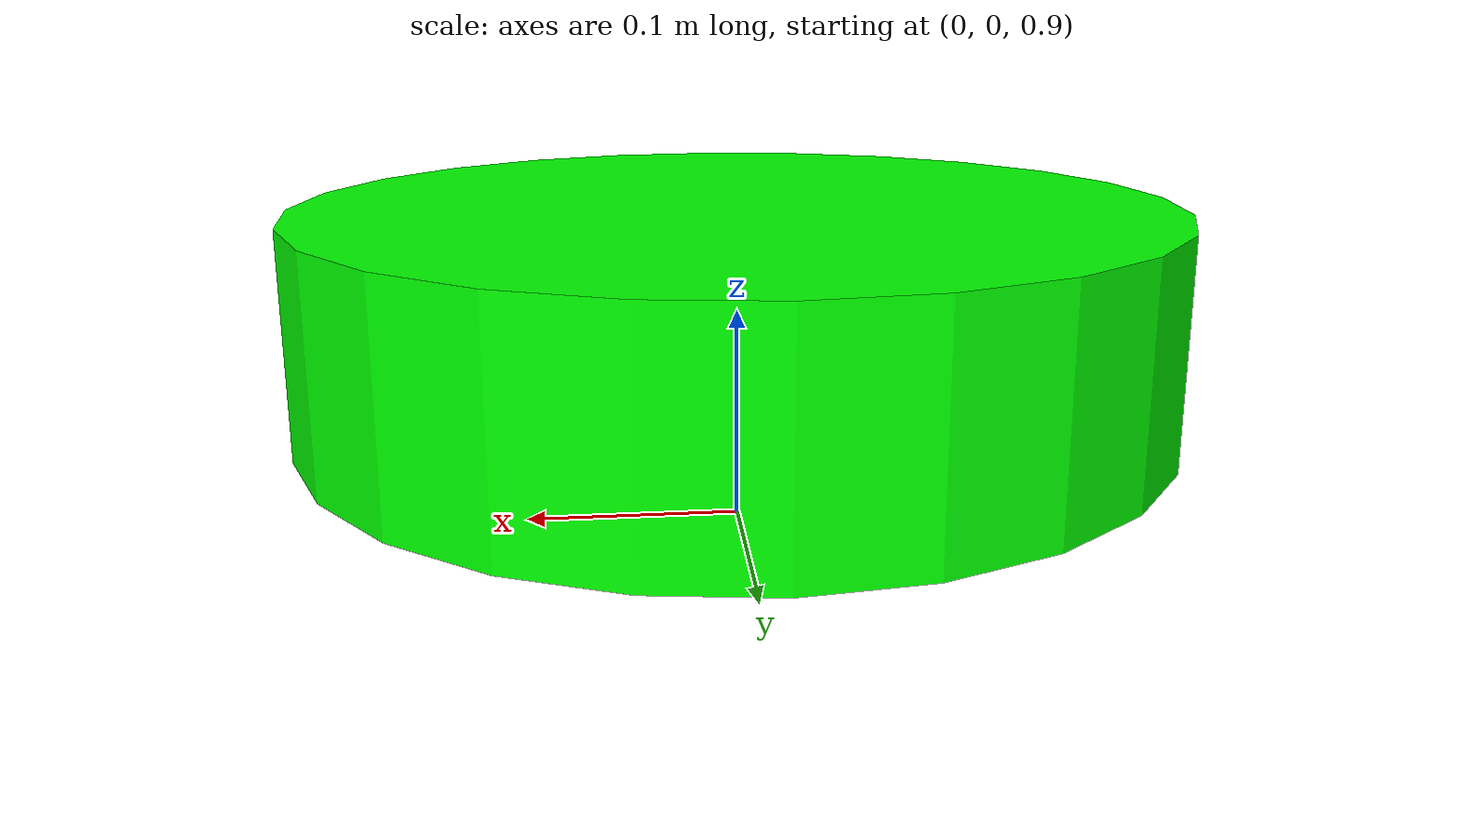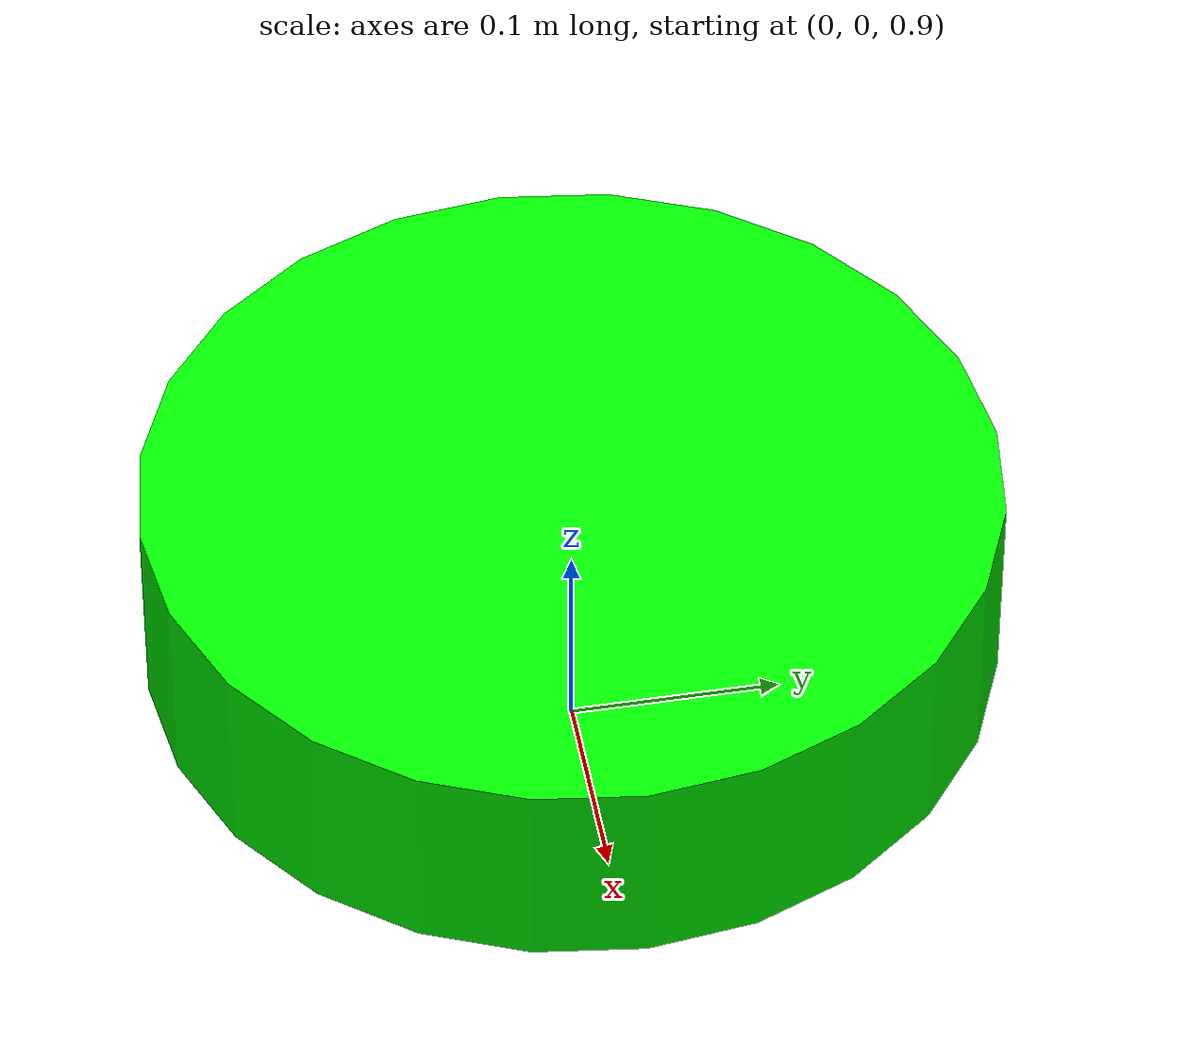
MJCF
<mujoco model="rotation_kinetic_energy_test">
    <option timestep = "0.005" gravity="0 0 -9.81"/>
    <worldbody>

        <!-- Disk -->
        <body name="object_1" pos="0 0 1">
            <geom type="cylinder" size="0.2 0.05" density="1263" rgba="0 1 0 1"/>
            <joint name="object_1_joint" type="free"/>
        </body>

        <!-- Plane -->
        <body name="object_2" pos="0 0 0">
            <geom type="plane" size="30 30 0.1" rgba="0.7 0.7 0.7 1" friction="1 1 1"/>
        </body>
    </worldbody>
</mujoco>
